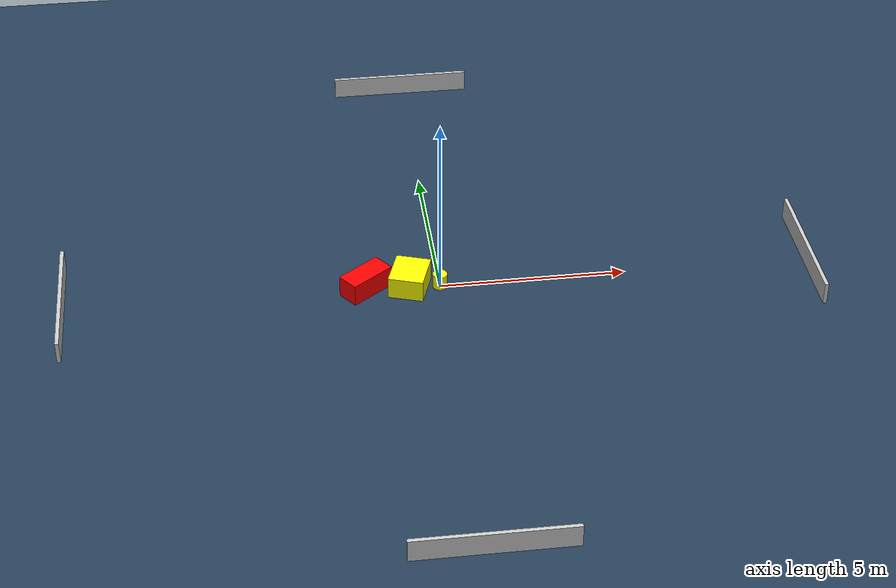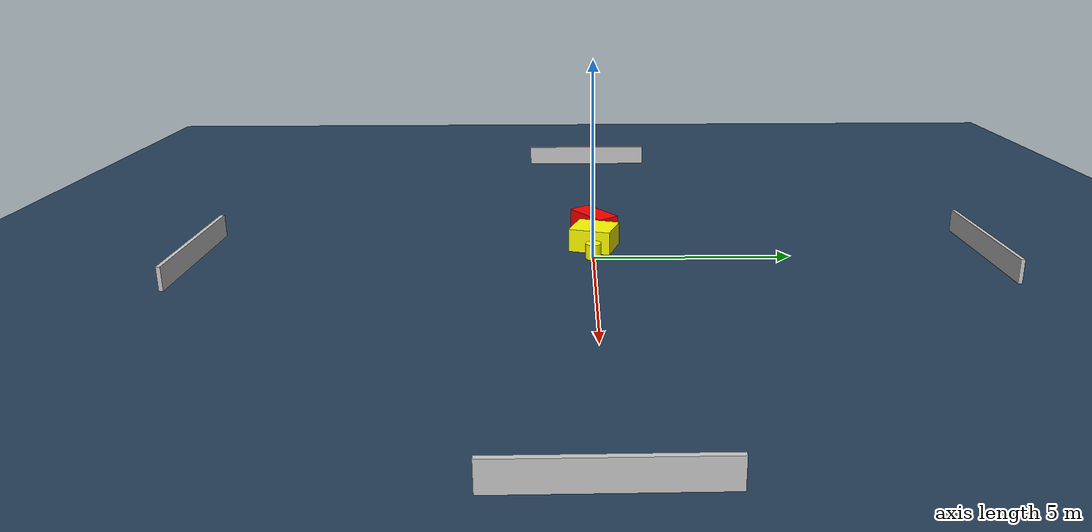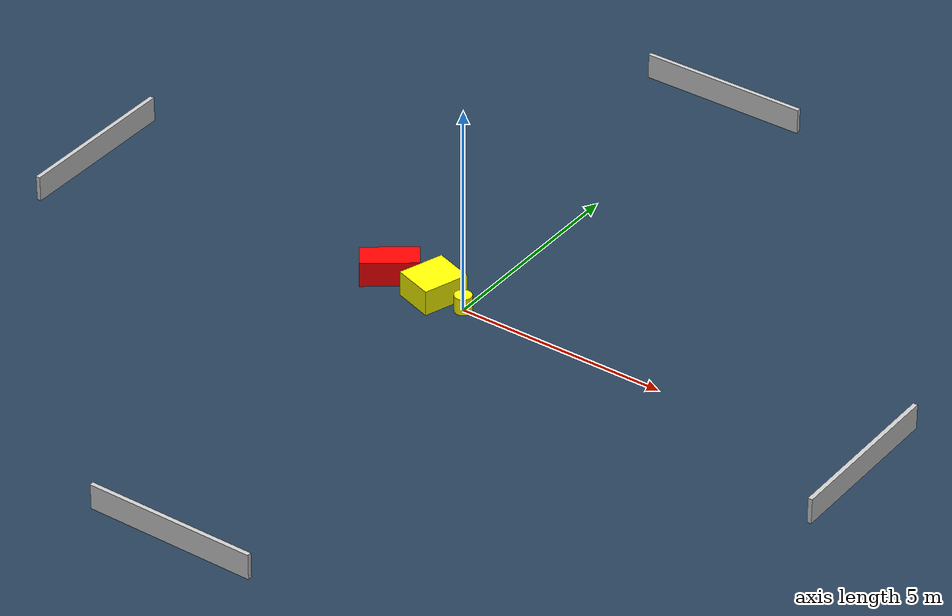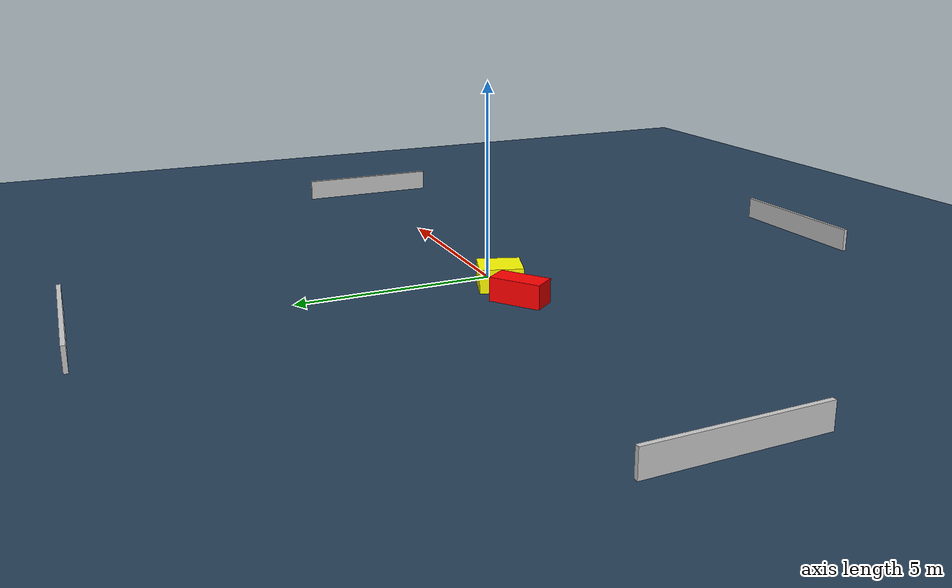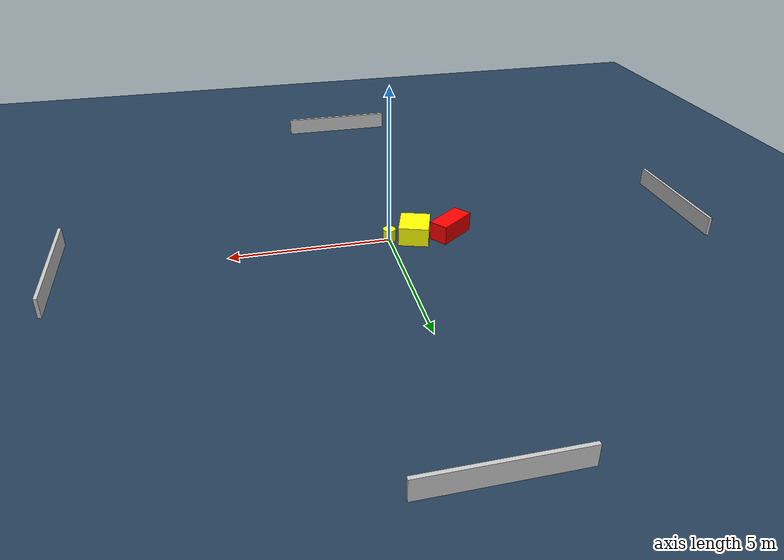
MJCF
<?xml version="1.0" ?>
<mujoco model="generated_environment">
  <option timestep="0.01" integrator="RK4" cone="elliptic"/>
  <default>
    <geom density="1"/>
  </default>
  <asset>
    <texture builtin="gradient" height="3072" name="skybox" rgb1="0.3 0.5 0.7" rgb2="0 0 0" type="skybox" width="512"/>
    <texture builtin="checker" height="300" name="groundplane" rgb1="0.2 0.3 0.4" rgb2="0.1 0.2 0.3" type="2d" width="300"/>
    <material name="groundplane" reflectance="0.2" texrepeat="5 5" texture="groundplane"/>
  </asset>
  <worldbody>
    <light dir="0 0 -1" directional="true" pos="0 0 1.5"/>
    <geom condim="3" friction="0.5 0.005 0.001" material="groundplane" name="floor" pos="0 0 0" size="0 0 0.05" type="plane"/>
    <body name="walls">
      <geom name="wall_1" condim="4" pos="-10.0 0.0 0.3" rgba="0.800000011920929 0.800000011920929 0.800000011920929 1.0" size="0.05 2.0 0.3" type="box"/>
      <geom name="wall_2" condim="4" pos="10.0 0.0 0.3" rgba="0.800000011920929 0.800000011920929 0.800000011920929 1.0" size="0.05 2.0 0.3" type="box"/>
      <geom name="wall_3" condim="4" pos="0.0 -10.0 0.3" rgba="0.800000011920929 0.800000011920929 0.800000011920929 1.0" size="2.0 0.05 0.3" type="box"/>
      <geom name="wall_4" condim="4" pos="0.0 10.0 0.3" rgba="0.800000011920929 0.800000011920929 0.800000011920929 1.0" size="2.0 0.05 0.3" type="box"/>
    </body>
    <body name="robot">
      <joint name="joint_x" type="slide" pos="0 0 0" axis="1 0 0"/>
      <joint name="joint_y" type="slide" pos="0 0 0" axis="0 1 0"/>
      <geom name="robot" type="cylinder" pos="0.0 0.0 0.2" size="0.2 0.2 0.0" mass="5.0" friction="1.0 0.005 0.0001" condim="4" rgba="1.0 1.0 0.0 1.0"/>
    </body>
    <body name="obstacle_1_movable">
      <geom name="obstacle_1_movable" condim="4" pos="-0.8074263973296232 0.04311498874490599 0.3" euler="0 0 71.49958719082522" friction="0.0 0.005 0.001" rgba="1.0 1.0 0.0 1.0" size="0.5439589549883004 0.4713734672025626 0.3" type="box" mass="0.1"/>
      <joint type="free"/>
    </body>
    <body name="obstacle_2_static">
      <geom name="obstacle_2_static" condim="4" pos="-1.9821089226631345 0.06228446778827721 0.3" euler="0 0 216.77988090384514" friction="0.0 0.005 0.001" rgba="1.0 0.0 0.0 1.0" size="0.6533734890940206 0.30846290926351705 0.3" type="box"/>
    </body>
  </worldbody>
  <actuator>
    <motor name="actuator_x" joint="joint_x" gear="1" ctrlrange="-1 1"/>
    <motor name="actuator_y" joint="joint_y" gear="1" ctrlrange="-1 1"/>
  </actuator>
</mujoco>
